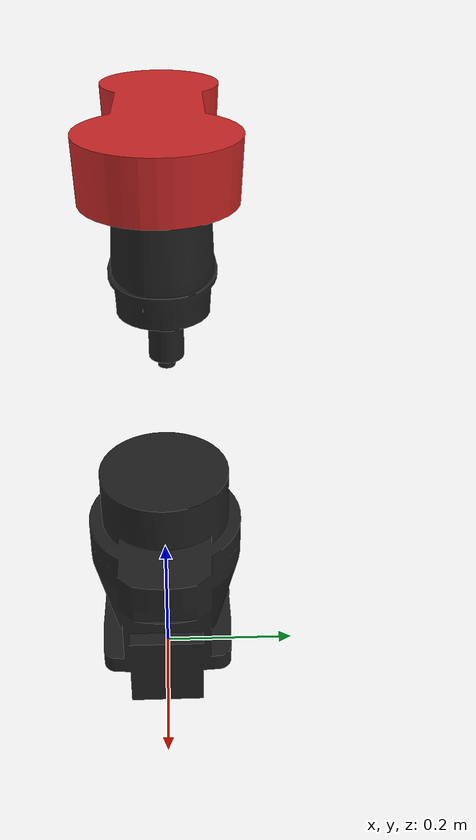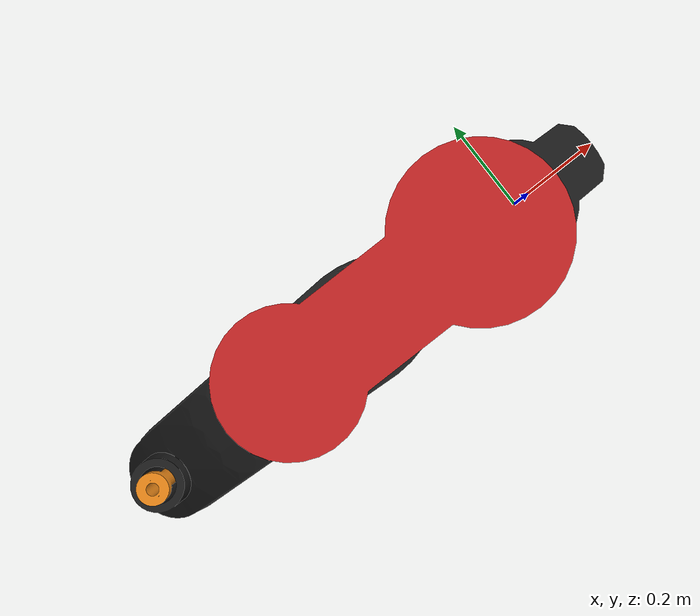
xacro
<?xml version="1.0"?>

<!-- Added the end effector casing as well as the Suction Gripper-->
<robot name="sr_scara_hx" xmlns:xacro="http://www.ros.org/wiki/xacro">

<xacro:property name="mass" value="1.000" /> 	  <!-- arbitrary value for mass -->
<xacro:property name="pos0" value="0.00158925" /> <!-- Link 1 -->
<xacro:property name="pos2" value="0.300" />      <!-- Link 2 -->
<xacro:property name="pos3" value="0" />          <!-- Link 3 -->

<!-- Import all Gazebo-customization elements, including Gazebo colors -->
<xacro:include filename="$(find robot_simulation)/URDF/sr_scara_hx.gazebo" />
<!-- Import Rviz colors -->
<xacro:include filename="$(find robot_simulation)/URDF/materials.xacro" />

<!--Links -->
<link name="base_link">
 <visual>
  <origin xyz="0 0 0.15" rpy="0 0 0" />
   <geometry>
     <mesh filename="package://robot_simulation/meshes/base_R01.stl" scale="0.001 0.001 0.001"/>
   </geometry>
   <material name="black"/>
 </visual>
 <collision>
  <origin xyz="0 0 0.15" rpy="0 0 0" />
   <geometry>
     <mesh filename="package://robot_simulation/meshes/base_R01.stl" scale="0.001 0.001 0.001"/>
   </geometry>
 </collision>
 <inertial>
      <origin xyz="0 0 0.15" rpy="0 0 0"/>
      <mass value="3000.0"/>
      <inertia
	  ixx="1.0" ixy="0.0" ixz="0.0"
	  iyy="1.0" iyz="0.0"
	  izz="1.0"/>
 </inertial>
</link>

<link name="link1">
 <visual>
  <origin xyz="-0.18 0 0.03" rpy="0 0 0" />
   <geometry>
     <mesh filename="package://robot_simulation/meshes/arm_link_R01.stl" scale="0.001 0.001 0.001"/>
   </geometry>
   <material name="red"/>
 </visual>
 <collision>
  <origin xyz="-0.18 0 0.03" rpy="0 0 0" />
   <geometry>
     <mesh filename="package://robot_simulation/meshes/arm_link_R01.stl" scale="0.001 0.001 0.001"/>
   </geometry>
 </collision>
 <inertial>
      <origin xyz="-0.18 0 0.03" rpy="0 0 0"/>
      <mass value="10.0"/>
      <inertia
	  ixx="1.0" ixy="0.0" ixz="0.0"
	  iyy="1.0" iyz="0.0"
	  izz="1.0"/>
 </inertial>
</link>

<link name="link2">
 <visual>
  <origin xyz="-0.23 0 0.06" rpy="0 0 0" />
   <geometry>
     <mesh filename="package://robot_simulation/meshes/head_link_R01.stl" scale="0.001 0.001 0.001"/>
   </geometry>
   <material name="black"/>
 </visual>
 <collision>
  <origin xyz="-0.23 0 0.06" rpy="0 0 0" />
   <geometry>
     <mesh filename="package://robot_simulation/meshes/head_link_R01.stl" scale="0.001 0.001 0.001"/>
   </geometry>
  </collision>
 <inertial>
      <origin xyz="-0.23 0 0.06" rpy="0 0 0"/>
      <mass value="10.0"/>
      <inertia
	  ixx="1.0" ixy="0.0" ixz="0.0"
	  iyy="1.0" iyz="0.0"
	  izz="1.0"/>
 </inertial>
</link>

<link name="probe">
 <visual>
  <origin xyz="0 0 -0.062" rpy="0 0 0" />
  <geometry>
     <mesh filename="package://robot_simulation/meshes/End_link_R01.stl" scale="0.001 0.001 0.001"/>
  </geometry>
  <material name="orange"/>
 </visual>
 <collision>
  <origin xyz="0 0 -0.062" rpy="0 0 0" />
  <geometry>
     <mesh filename="package://robot_simulation/meshes/End_link_R01.stl" scale="0.001 0.001 0.001"/>
  </geometry>
 </collision>
 <inertial>
      <origin xyz="0 0 -0.062" rpy="0 0 0"/>
      <mass value="2.0"/>
      <inertia
	  ixx="1.0" ixy="0.0" ixz="0.0"
	  iyy="1.0" iyz="0.0"
	  izz="1.0"/>
 </inertial>
</link>

<link name="gripper">
 <visual>
  <origin xyz="0 0 0" rpy="0 0 0"/>
  <geometry>
  <cylinder length="0.08" radius="0.04"/>
  </geometry>
  <material name="black"/>
 </visual>
 <collision>
  <origin xyz="0 0 0" rpy="0 0 0"/>
  <geometry>
  <cylinder length="0.08" radius="0.04"/>
  </geometry>
 </collision>
 <inertial>
     <origin xyz="0 0 0" rpy="0 0 0"/>
     <mass value="0.3"/>
     <inertia
         ixx="1.0" ixy="0.0" ixz="0.0"
	 iyy="1.0" iyz="0.0"
	 izz="1.0"/>
 </inertial>
</link>

<link name="gripper_end_effector">
 <visual>
  <origin xyz="0 0 0" rpy="0 0 0"/>
  <geometry>
  <cylinder length="0.04" radius="0.02"/>
  </geometry>
  <material name="black"/>
 </visual>
 <collision>
  <origin xyz="0 0 0" rpy="0 0 0"/>
  <geometry>
  <cylinder length="0.001" radius="0.004"/>
  </geometry>
 </collision>
 <inertial>
     <origin xyz="0 0 0" rpy="0 0 0"/>
     <mass value="0.1"/>
     <inertia
         ixx="1.0" ixy="0.0" ixz="0.0"
	 iyy="1.0" iyz="0.0"
	 izz="1.0"/>
 </inertial>
</link>

<!-- Joints -->

<joint name="joint1" type="revolute">
  <axis xyz="0 0 1" />
  <limit effort="3.0" velocity="0.01" lower="-2.792" upper="2.792"/>
  <origin xyz="0 0 0.33" rpy="0 0 0" />
  <parent link="base_link" />
  <child link="link1" />
</joint>

<joint name="joint2" type="revolute">
 <axis xyz="0 0 1" />
 <limit effort="3.0" velocity="0.01" lower="-2.443" upper="2.443"/>
 <origin xyz="-0.35 0 0.08" rpy="0 0 0" />
 <parent link="link1" />
 <child link="link2" />
</joint>

<joint name="joint3" type="prismatic">
 <axis xyz="0 0 1" />
 <limit effort="3.0" velocity="0.01" lower="0.0" upper="0.13"/>
 <origin xyz="-0.38 0 0.08" rpy="0 0 0" />
 <parent link="link2" />
 <child link="probe" />
</joint>

<joint name ="joint4" type="fixed">
 <origin xyz="0 0 -0.335" rpy="0 0 0"/>
 <parent link = "probe"/>
 <child link = "gripper"/>
</joint>

<joint name ="joint5" type="fixed">
 <origin xyz="-0.008 0 -0.05" rpy="0 0 0"/>
 <parent link = "gripper"/>
 <child link = "gripper_end_effector"/>
</joint>

<!-- Transmissions -->

<transmission name="tran1">
  <type>transmission_interface/SimpleTransmission</type>
    <joint name="joint1">
      <hardwareInterface>hardware_interface/PositionJointInterface</hardwareInterface>
    </joint>
    <actuator name="motor1">
      <hardwareInterface>hardware_interface/PositionJointInterface</hardwareInterface>
      <mechanicalReduction>1</mechanicalReduction>
    </actuator>
</transmission>

<transmission name="tran2">
   <type>transmission_interface/SimpleTransmission</type>
    <joint name="joint2">
      <hardwareInterface>hardware_interface/PositionJointInterface</hardwareInterface>
    </joint>
    <actuator name="motor2">
      <hardwareInterface>hardware_interface/PositionJointInterface</hardwareInterface>
      <mechanicalReduction>1</mechanicalReduction>
    </actuator>
</transmission>

<transmission name="tran3">
   <type>transmission_interface/SimpleTransmission</type>
    <joint name="joint3">
      <hardwareInterface>hardware_interface/PositionJointInterface</hardwareInterface>
    </joint>
    <actuator name="motor3">
      <hardwareInterface>hardware_interface/PositionJointInterface</hardwareInterface>
      <mechanicalReduction>1</mechanicalReduction>
    </actuator>
</transmission>
</robot>
